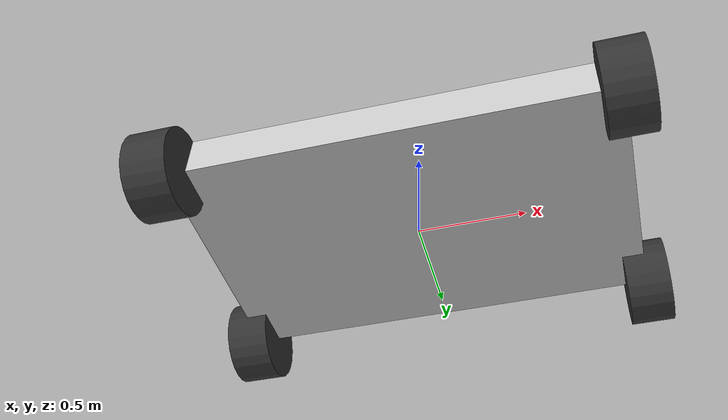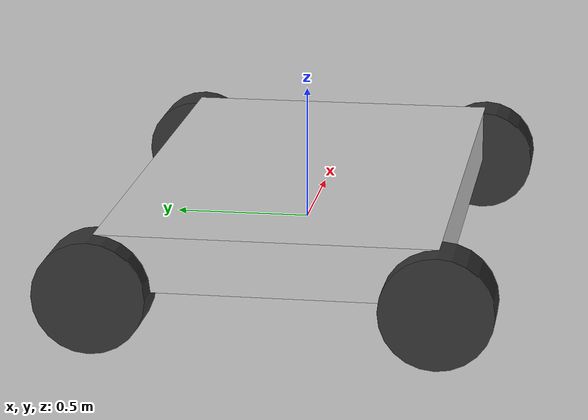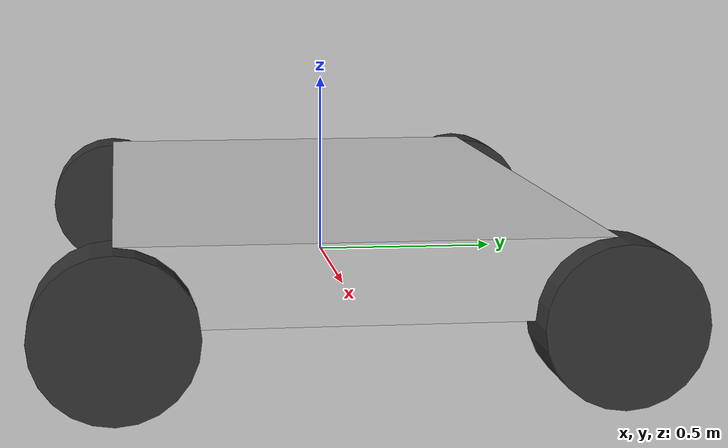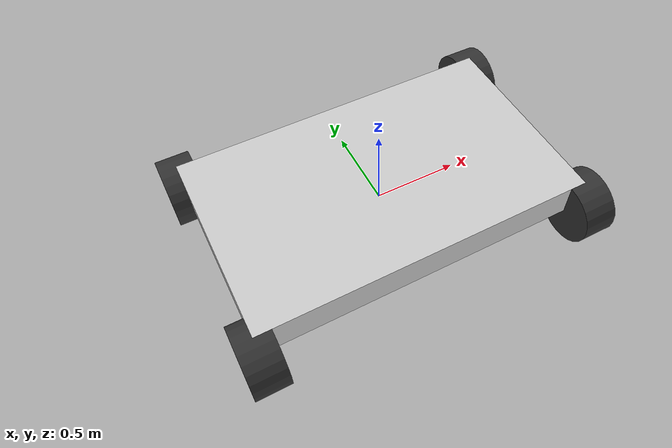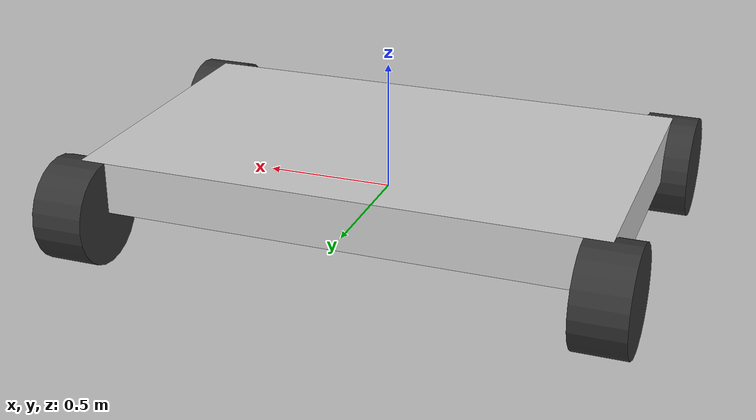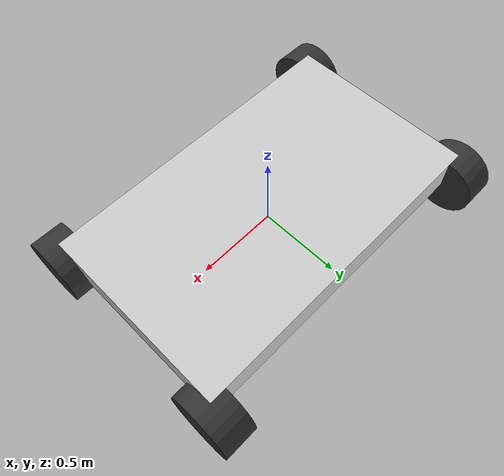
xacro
<robot name="ackermann_car" xmlns:xacro="http://www.ros.org/wiki/xacro">
  <!--
    A simple Ackermann car URDF for ROS 2 + Gazebo.
    - One chassis
    - Four wheels (two steered front wheels, two driven rear wheels)
    - Uses gazebo_ros_ackermann_drive plugin
  -->

  <!--            LINKS           -->

  <!-- Chassis link -->
  <link name="chassis">
    <visual>
      <geometry>
        <!-- A simple box for the chassis -->
        <box size="2.0 1.2 0.2"/>
      </geometry>
      <material>
        <color rgba="0.8 0.8 0.8 1"/>
      </material>
      <origin xyz="0 0 0.1"/>
    </visual>
    <collision>
      <geometry>
        <box size="2.0 1.2 0.2"/>
      </geometry>
      <origin xyz="0 0 0.1"/>
    </collision>
    <inertial>
      <!-- Rough, made-up values for example only -->
      <mass value="50.0"/>
      <origin xyz="0 0 0.1"/>
      <inertia ixx="2.0" ixy="0.0" ixz="0.0" iyy="2.0" iyz="0.0" izz="2.0"/>
    </inertial>
  </link>

  <!-- Front left wheel link -->
  <link name="front_left_wheel">
    <visual>
      <geometry>
        <cylinder radius="0.2" length="0.2"/>
      </geometry>
      <origin xyz="0 0 0" rpy="0 1.5708 0"/>
      <material>
        <color rgba="0.2 0.2 0.2 1"/>
      </material>
    </visual>
    <collision>
      <geometry>
        <cylinder radius="0.2" length="0.2"/>
      </geometry>
      <origin xyz="0 0 0" rpy="0 1.5708 0"/>
    </collision>
    <inertial>
      <mass value="5.0"/>
      <origin xyz="0 0 0"/>
      <inertia ixx="0.02" ixy="0.0" ixz="0.0" iyy="0.02" iyz="0.0" izz="0.02"/>
    </inertial>
  </link>

  <!-- Front right wheel link -->
  <link name="front_right_wheel">
    <visual>
      <geometry>
        <cylinder radius="0.2" length="0.2"/>
      </geometry>
      <origin xyz="0 0 0" rpy="0 1.5708 0"/>
      <material>
        <color rgba="0.2 0.2 0.2 1"/>
      </material>
    </visual>
    <collision>
      <geometry>
        <cylinder radius="0.2" length="0.2"/>
      </geometry>
      <origin xyz="0 0 0" rpy="0 1.5708 0"/>
    </collision>
    <inertial>
      <mass value="5.0"/>
      <origin xyz="0 0 0"/>
      <inertia ixx="0.02" ixy="0.0" ixz="0.0" iyy="0.02" iyz="0.0" izz="0.02"/>
    </inertial>
  </link>

  <!-- Rear left wheel link -->
  <link name="rear_left_wheel">
    <visual>
      <geometry>
        <cylinder radius="0.2" length="0.2"/>
      </geometry>
      <origin xyz="0 0 0" rpy="0 1.5708 0"/>
      <material>
        <color rgba="0.2 0.2 0.2 1"/>
      </material>
    </visual>
    <collision>
      <geometry>
        <cylinder radius="0.2" length="0.2"/>
      </geometry>
      <origin xyz="0 0 0" rpy="0 1.5708 0"/>
    </collision>
    <inertial>
      <mass value="5.0"/>
      <origin xyz="0 0 0"/>
      <inertia ixx="0.02" ixy="0.0" ixz="0.0" iyy="0.02" iyz="0.0" izz="0.02"/>
    </inertial>
  </link>

  <!-- Rear right wheel link -->
  <link name="rear_right_wheel">
    <visual>
      <geometry>
        <cylinder radius="0.2" length="0.2"/>
      </geometry>
      <origin xyz="0 0 0" rpy="0 1.5708 0"/>
      <material>
        <color rgba="0.2 0.2 0.2 1"/>
      </material>
    </visual>
    <collision>
      <geometry>
        <cylinder radius="0.2" length="0.2"/>
      </geometry>
      <origin xyz="0 0 0" rpy="0 1.5708 0"/>
    </collision>
    <inertial>
      <mass value="5.0"/>
      <origin xyz="0 0 0"/>
      <inertia ixx="0.02" ixy="0.0" ixz="0.0" iyy="0.02" iyz="0.0" izz="0.02"/>
    </inertial>
  </link>

  <!--           JOINTS           -->

  <!-- Front left steering joint (vertical axis for steering) -->
  <joint name="front_left_steer_joint" type="revolute">
    <parent link="chassis"/>
    <child link="front_left_wheel"/>
    <!-- Position the wheel forward (x=1.0) and left (y=0.6); adjust as needed -->
    <origin xyz="1.0 0.6 0.0" rpy="0 0 0"/>
    <axis xyz="0 0 1"/>
    <limit lower="-0.7" upper="0.7" effort="100.0" velocity="1.0"/>
    <dynamics damping="0.1" friction="0.1"/>
  </joint>

  <!-- Front right steering joint (vertical axis for steering) -->
  <joint name="front_right_steer_joint" type="revolute">
    <parent link="chassis"/>
    <child link="front_right_wheel"/>
    <!-- Forward (x=1.0), right (y=-0.6) -->
    <origin xyz="1.0 -0.6 0.0" rpy="0 0 0"/>
    <axis xyz="0 0 1"/>
    <limit lower="-0.7" upper="0.7" effort="100.0" velocity="1.0"/>
    <dynamics damping="0.1" friction="0.1"/>
  </joint>

  <!-- Rear left wheel joint (rotation about y-axis for rolling) -->
  <joint name="rear_left_wheel_joint" type="revolute">
    <parent link="chassis"/>
    <child link="rear_left_wheel"/>
    <!-- Position the wheel behind the chassis (x=-1.0) and to the left (y=0.6) -->
    <origin xyz="-1.0 0.6 0.0" rpy="0 0 0"/>
    <axis xyz="0 1 0"/>
    <limit lower="0.0" upper="0.0" effort="100.0" velocity="0.0"/>
    <dynamics damping="0.1" friction="0.1"/>
  </joint>

  <!-- Rear right wheel joint (rotation about y-axis for rolling) -->
  <joint name="rear_right_wheel_joint" type="revolute">
    <parent link="chassis"/>
    <child link="rear_right_wheel"/>
    <origin xyz="-1.0 -0.6 0.0" rpy="0 0 0"/>
    <axis xyz="0 1 0"/>
    <limit lower="0.0" upper="0.0" effort="100.0" velocity="0.0"/>
    <dynamics damping="0.1" friction="0.1"/>
  </joint>

  <!--        GAZEBO PLUGINS      -->
  <gazebo>
    <plugin name="gazebo_ros_ackermann_drive" filename="libgazebo_ros_ackermann_drive.so">
      <ros>
        <!-- You can place this in a namespace if desired -->
        <namespace>/</namespace>
        <!-- Remap or name your ackermann command topic -->
        <remapping>cmd_ackermann:=cmd_ackermann</remapping>
      </ros>

      <ackermann_drive>
        <left_steering_joint>front_left_steer_joint</left_steering_joint>
        <right_steering_joint>front_right_steer_joint</right_steering_joint>
        <left_wheel_joint>rear_left_wheel_joint</left_wheel_joint>
        <right_wheel_joint>rear_right_wheel_joint</right_wheel_joint>

        <!-- Steering limit in radians -->
        <steering_limit>0.7</steering_limit>

      </ackermann_drive>
    </plugin>
  </gazebo>

</robot>
